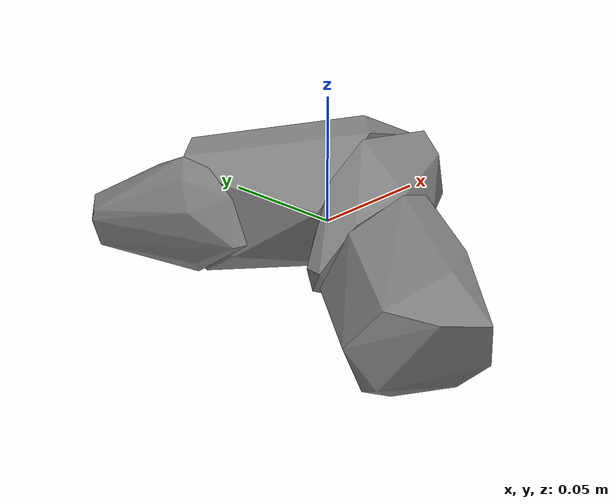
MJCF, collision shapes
<mujoco model="b_toy_airplane">
  <compiler angle="radian" />

  <asset>
    <mesh name="b_toy_airplane_visual_mesh" file="b_toy_airplane/textured.obj" />
    <mesh name="b_toy_airplane_collision_mesh_0" file="b_toy_airplane/textured_coacd_0.stl" />
    <mesh name="b_toy_airplane_collision_mesh_1" file="b_toy_airplane/textured_coacd_1.stl" />
    <mesh name="b_toy_airplane_collision_mesh_2" file="b_toy_airplane/textured_coacd_2.stl" />
    <mesh name="b_toy_airplane_collision_mesh_3" file="b_toy_airplane/textured_coacd_3.stl" />
    <texture name="b_toy_airplane_texture" type="2d" file="b_toy_airplane/texture_map.png" />
    <material name="b_toy_airplane_material" texture="b_toy_airplane_texture" />
  </asset>

  <worldbody>
    <body name="b_toy_airplane" pos="0 0 0" euler="0 0 0">
      <freejoint name="b_toy_airplane_joint" />
      <geom name="b_toy_airplane_visual_geom" type="mesh" mesh="b_toy_airplane_visual_mesh" material="b_toy_airplane_material" pos="0.04948007536634335 -0.011121747774205814 -0.025398688412704613" euler="0 0 0" contype="0" conaffinity="0" group="0" />
      <geom name="b_toy_airplane_collision_geom_0" type="mesh" mesh="b_toy_airplane_collision_mesh_0" pos="0.04948007536634335 -0.011121747774205814 -0.025398688412704613" euler="0 0 0" contype="1" conaffinity="1" group="3" />
      <geom name="b_toy_airplane_collision_geom_1" type="mesh" mesh="b_toy_airplane_collision_mesh_1" pos="0.04948007536634335 -0.011121747774205814 -0.025398688412704613" euler="0 0 0" contype="1" conaffinity="1" group="3" />
      <geom name="b_toy_airplane_collision_geom_2" type="mesh" mesh="b_toy_airplane_collision_mesh_2" pos="0.04948007536634335 -0.011121747774205814 -0.025398688412704613" euler="0 0 0" contype="1" conaffinity="1" group="3" />
      <geom name="b_toy_airplane_collision_geom_3" type="mesh" mesh="b_toy_airplane_collision_mesh_3" pos="0.04948007536634335 -0.011121747774205814 -0.025398688412704613" euler="0 0 0" contype="1" conaffinity="1" group="3" />
      <inertial pos="0 0 0" euler="0 0 0" mass="0.114" diaginertia="0.001 0.001 0.001" />
    </body>
  </worldbody>
</mujoco>
